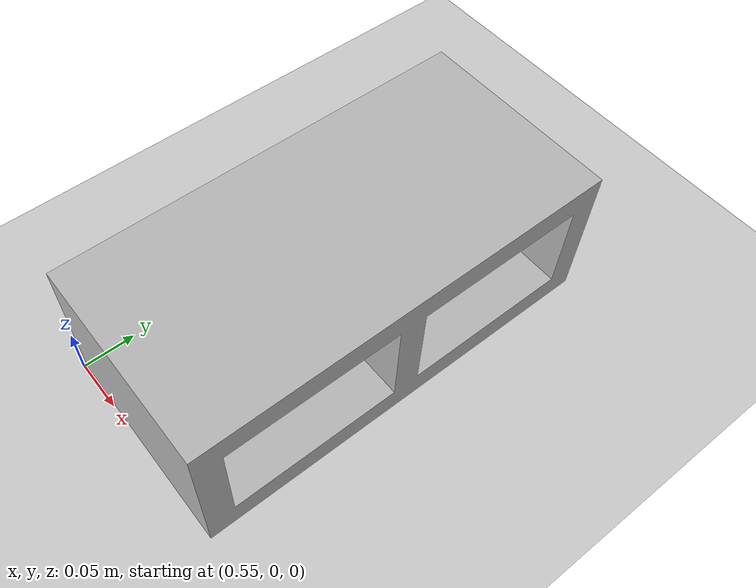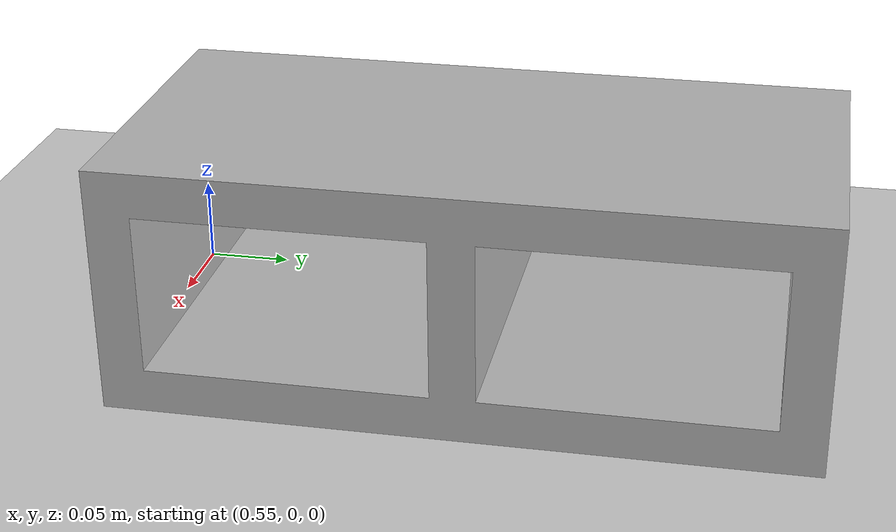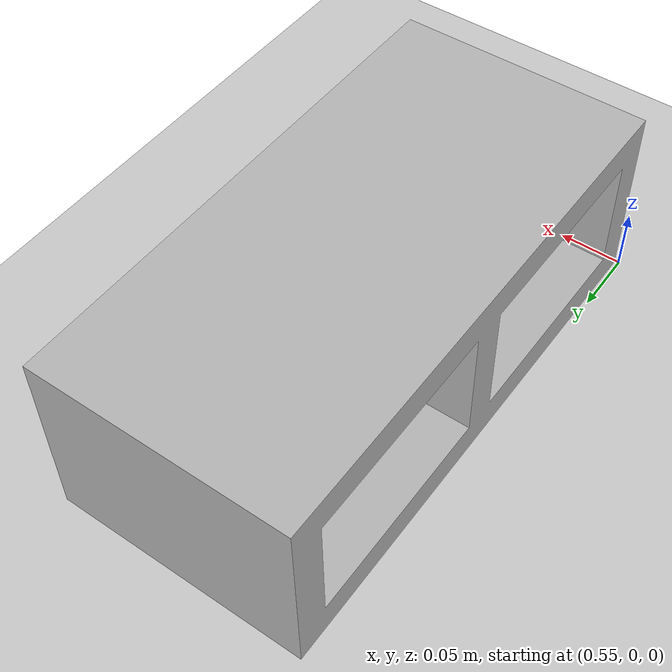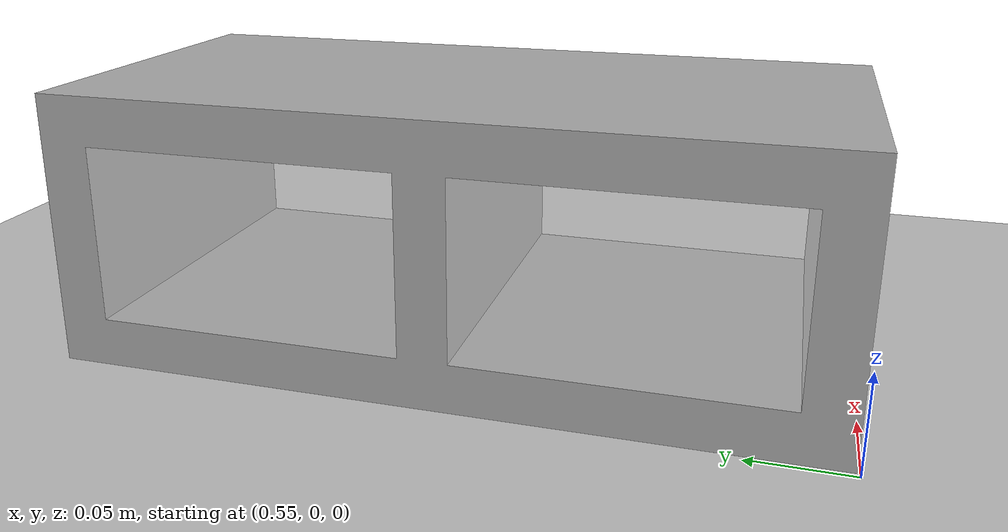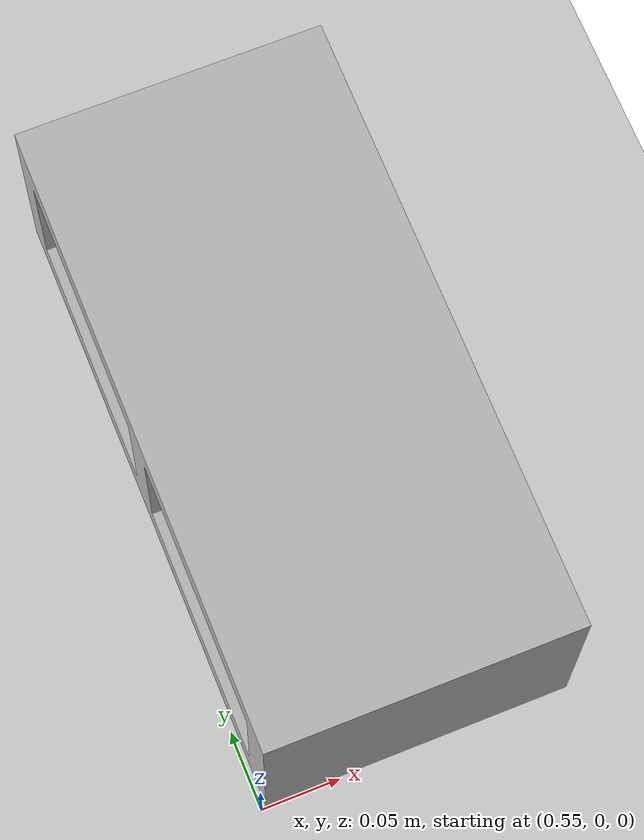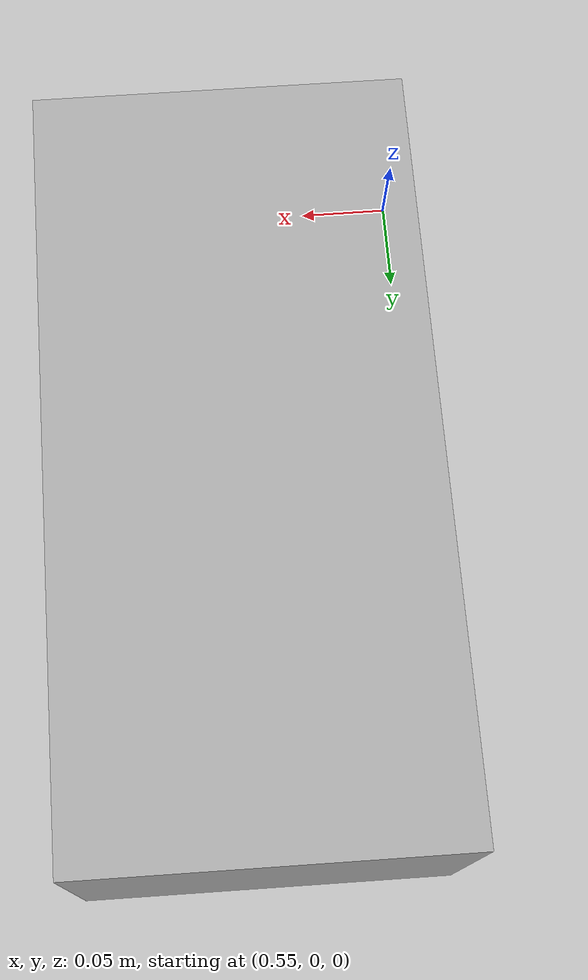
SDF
<sdf version="1.6">
 <world name="default">
  <light name="sun" type="directional">
   <pose>0 0 10 0 -0 0</pose>
   <diffuse>0.8 0.8 0.8 1</diffuse>
   <specular>0.2 0.2 0.2 1</specular>
   <attenuation>
    <range>1000</range>
    <constant>0.9</constant>
    <linear>0.01</linear>
    <quadratic>0.001</quadratic>
   </attenuation>
   <direction>-0.5 0.1 -0.9</direction>
  </light>
  <model name="ground_plane">
   <static>1</static>
   <link name="link">
    <collision name="collision">
     <geometry><plane><normal>0 0 1</normal><size>100 100</size></plane></geometry>
     <surface>
      <contact><collide_bitmask>65535</collide_bitmask></contact>
      <friction><ode><mu>100</mu><mu2>50</mu2></ode></friction>
     </surface>
    </collision>
    <visual name="visual">
     <cast_shadows>0</cast_shadows>
     <geometry><plane><normal>0 0 1</normal><size>100 100</size></plane></geometry>
     <material>
      <script><uri>file://media/materials/scripts/gazebo.material</uri><name>Gazebo/Grey</name></script>
     </material>
    </visual>
   </link>
  </model>
  <gravity>0 0 -9.8</gravity>
  <magnetic_field>6e-06 2.3e-05 -4.2e-05</magnetic_field>
  <atmosphere type="adiabatic"/>
  <physics name="default_physics" default="0" type="ode">
   <max_step_size>0.001</max_step_size>
   <real_time_factor>1</real_time_factor>
   <real_time_update_rate>1000</real_time_update_rate>
  </physics>
  <scene><ambient>0.4 0.4 0.4 1</ambient><background>0.7 0.7 0.7 1</background><shadows>1</shadows></scene>
  <spherical_coordinates>
   <surface_model>EARTH_WGS84</surface_model>
   <latitude_deg>0</latitude_deg>
   <longitude_deg>0</longitude_deg>
   <elevation>0</elevation>
   <heading_deg>0</heading_deg>
  </spherical_coordinates>
  <model name="cinder_block_2">
   <link name="link">
    <inertial>
     <pose>0 0 0.071438 0 -0 0</pose>
     <mass>1</mass>
     <inertia>
      <ixx>0.06908</ixx>
      <ixy>0</ixy>
      <iyy>0.028705</iyy>
      <ixz>0</ixz>
      <iyz>0</iyz>
      <izz>0.073708</izz>
     </inertia>
    </inertial>
    <visual name="visual">
     <geometry><mesh><uri>model://cinder_block_2/meshes/cinder_block.dae</uri></mesh></geometry>
    </visual>
    <collision name="top">
     <pose>0 0 0.130175 0 -0 0</pose>
     <geometry><box><size>0.19368 0.396875 0.02</size></box></geometry>
     <surface>
      <contact><ode><max_vel>0.1</max_vel><min_depth>0.001</min_depth></ode></contact>
      <friction><ode><mu>10</mu><mu2>10</mu2></ode></friction>
     </surface>
    </collision>
    <collision name="bottom">
     <pose>0 0 0.0127 0 -0 0</pose>
     <geometry><box><size>0.19368 0.396875 0.02</size></box></geometry>
     <surface>
      <contact><ode><max_vel>0.1</max_vel><min_depth>0.001</min_depth></ode></contact>
      <friction><ode><mu>10</mu><mu2>10</mu2></ode></friction>
     </surface>
    </collision>
    <collision name="left">
     <pose>0 -0.185738 0.071438 0 -0 0</pose>
     <geometry><box><size>0.19368 0.02 0.092075</size></box></geometry>
     <surface>
      <contact><ode><max_vel>0.1</max_vel><min_depth>0.001</min_depth></ode></contact>
      <friction><ode><mu>10</mu><mu2>10</mu2></ode></friction>
     </surface>
    </collision>
    <collision name="right">
     <pose>0 0.185738 0.071438 0 -0 0</pose>
     <geometry><box><size>0.19368 0.02 0.092075</size></box></geometry>
     <surface>
      <contact><ode><max_vel>0.1</max_vel><min_depth>0.001</min_depth></ode></contact>
      <friction><ode><mu>10</mu><mu2>10</mu2></ode></friction>
     </surface>
    </collision>
    <collision name="middle">
     <pose>0 0 0.071438 0 -0 0</pose>
     <geometry><box><size>0.19368 0.02 0.092075</size></box></geometry>
     <surface>
      <contact><ode><max_vel>0.1</max_vel><min_depth>0.001</min_depth></ode></contact>
      <friction><ode><mu>10</mu><mu2>10</mu2></ode></friction>
     </surface>
    </collision>
   </link>
   <pose>0.65 0.2 -1e-05 0 -0 0</pose>
  </model>
 </world>
</sdf>
